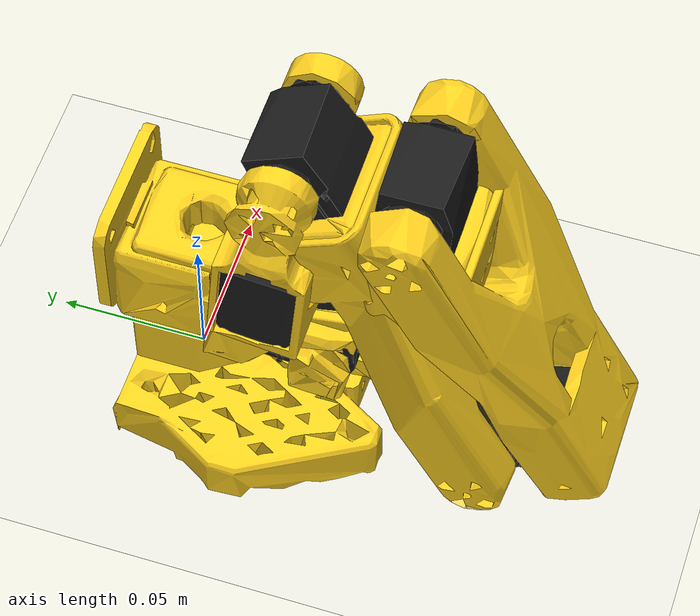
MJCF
<mujoco model="SO-ARM100">
  <compiler angle="radian" autolimits="true"/>

  <option timestep="0.002" integrator="Euler"/>

  <asset>
    <mesh file="assets/Base.stl" name="Base"/>
    <mesh file="assets/Base_Motor.stl" name="Base_Motor"/>
    <mesh file="assets/Fixed_Jaw.stl" name="Fixed_Jaw"/>
    <mesh file="assets/Fixed_Jaw_Motor.stl" name="Fixed_Jaw_Motor"/>
    <mesh file="assets/Lower_Arm.stl" name="Lower_Arm"/>
    <mesh file="assets/Lower_Arm_Motor.stl" name="Lower_Arm_Motor"/>
    <mesh file="assets/Moving_Jaw.stl" name="Moving_Jaw"/>
    <mesh file="assets/Rotation_Pitch.stl" name="Rotation_Pitch"/>
    <mesh file="assets/Rotation_Pitch_Motor.stl" name="Rotation_Pitch_Motor"/>
    <mesh file="assets/Upper_Arm.stl" name="Upper_Arm"/>
    <mesh file="assets/Upper_Arm_Motor.stl" name="Upper_Arm_Motor"/>
    <mesh file="assets/Wrist_Pitch_Roll.stl" name="Wrist_Pitch_Roll"/>
    <mesh file="assets/Wrist_Pitch_Roll_Motor.stl" name="Wrist_Pitch_Roll_Motor"/>
  </asset>

  <worldbody>
    <light diffuse=".5 .5 .5" pos="0 0 3" dir="0 0 -1"/>
    <geom type="plane" conaffinity="1" rgba=".9 .9 .9 1" size="1 1 0.01"/>

    <!-- Base -->
    <body name="base" pos="0 0 0">
      <freejoint name="base"/>
      <geom type="mesh" mesh="Base" rgba="1 0.82 0.12 1" mass="1"/>
      <geom type="mesh" mesh="Base_Motor" rgba="0.1 0.1 0.1 1" contype="0"/>

      <!-- Shoulder Pan: rot 90° around X, axis Y -->
      <body name="shoulder" pos="0 -0.0452 0.0165" quat="0.707 0.707 0 0">
        <joint name="shoulder_pan" type="hinge" axis="0 0 1" range="-2 2" damping="0.5"/>
        <geom type="mesh" mesh="Rotation_Pitch" rgba="1 0.82 0.12 1"/>
        <geom type="mesh" mesh="Rotation_Pitch_Motor" rgba="0.1 0.1 0.1 1" contype="0"/>

        <!-- Shoulder Lift: rot -1.8 rad around X -->
        <body name="upper_arm" pos="0 0.1025 0.0306" quat="0.239 0.971 0 0">
          <joint name="shoulder_lift" type="hinge" axis="1 0 0" range="0 3.5" damping="0.5"/>
          <geom type="mesh" mesh="Upper_Arm" rgba="1 0.82 0.12 1"/>
          <geom type="mesh" mesh="Upper_Arm_Motor" rgba="0.1 0.1 0.1 1" contype="0"/>

          <!-- Elbow Flex: rot 90° around X -->
          <body name="lower_arm" pos="0 0.11257 0.028" quat="0.707 0.707 0 0">
            <joint name="elbow_flex" type="hinge" axis="0 1 0" range="-3.14158 0" damping="0.5"/>
            <geom type="mesh" mesh="Lower_Arm" rgba="1 0.82 0.12 1"/>
            <geom type="mesh" mesh="Lower_Arm_Motor" rgba="0.1 0.1 0.1 1" contype="0"/>

            <!-- Wrist Flex: rot -1 rad around X -->
            <body name="wrist" pos="0 0.0052 0.1349" quat="0.479 0.878 0 0">
              <joint name="wrist_flex" type="hinge" axis="1 0 0" range="-2.5 1.2" damping="0.5"/>
              <geom type="mesh" mesh="Wrist_Pitch_Roll" rgba="1 0.82 0.12 1"/>
              <geom type="mesh" mesh="Wrist_Pitch_Roll_Motor" rgba="0.1 0.1 0.1 1" contype="0"/>

              <!-- Wrist Roll: rot 90° around Y -->
              <body name="gripper" pos="0 -0.0601 0" quat="0.707 0 0.707 0">
                <joint name="wrist_roll" type="hinge" axis="0 0 1" range="-3.14158 3.14158" damping="0.5"/>
                <geom type="mesh" mesh="Fixed_Jaw" rgba="1 0.82 0.12 1"/>
                <geom type="mesh" mesh="Fixed_Jaw_Motor" rgba="0.1 0.1 0.1 1" contype="0"/>

                <!-- Gripper: rot 180° around Y -->
                <body name="jaw" pos="-0.0202 -0.0244 0" quat="0 0 1 0">
                  <joint name="gripper" type="hinge" axis="0 1 0" range="-0.2 2.0" damping="0.5"/>
                  <geom type="mesh" mesh="Moving_Jaw" rgba="1 0.82 0.12 1"/>
                </body>
              </body>
            </body>
          </body>
        </body>
      </body>
    </body>
  </worldbody>

  <actuator>
    <motor joint="shoulder_pan" gear="1"/>
    <motor joint="shoulder_lift" gear="1"/>
    <motor joint="elbow_flex" gear="1"/>
    <motor joint="wrist_flex" gear="1"/>
    <motor joint="wrist_roll" gear="1"/>
    <motor joint="gripper" gear="1"/>
  </actuator>
</mujoco>
